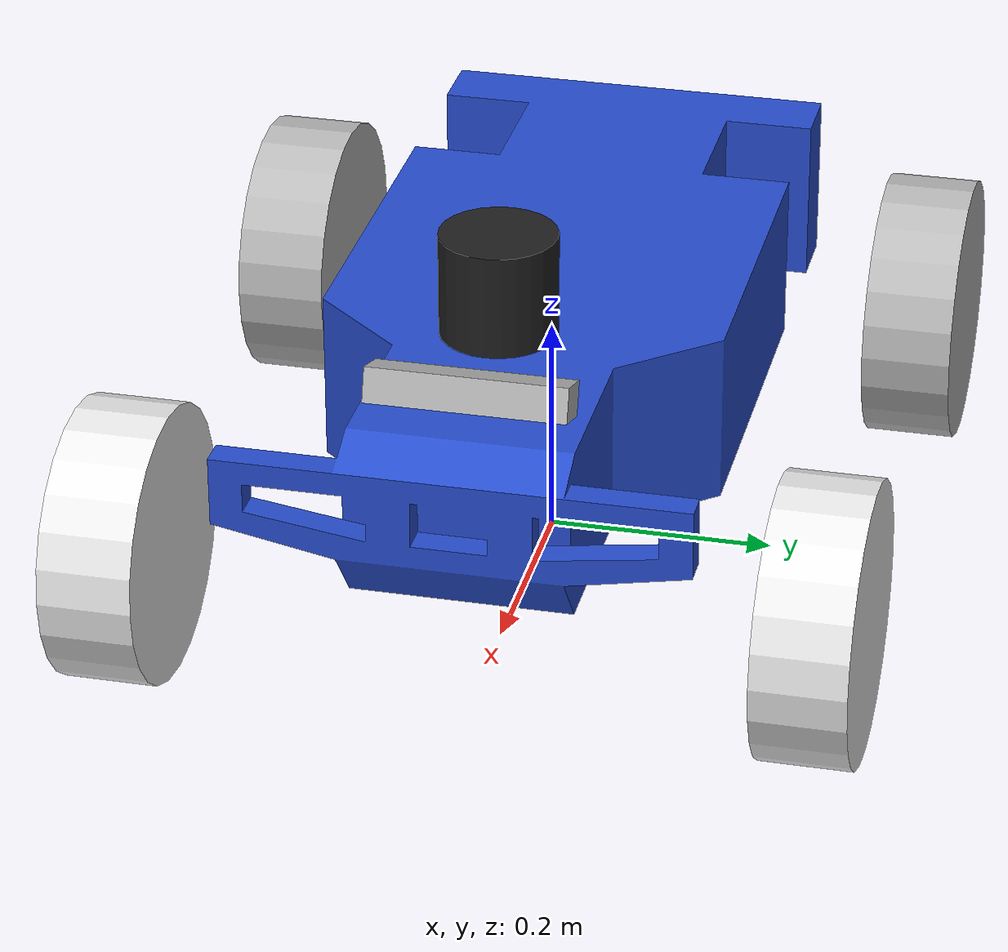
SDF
<sdf version='1.7'>
  <model name='rosbot'>
    <static>false</static>
    <link name='base_footprint'>
      <inertial>
        <pose>0.00083 0 0.190622 0 -0 0</pose>
        <mass>30.125</mass>
        <inertia>
          <ixx>1.0038</ixx>
          <ixy>0</ixy>
          <ixz>-0.00373444</ixz>
          <iyy>1.00878</iyy>
          <iyz>0</iyz>
          <izz>1.00598</izz>
        </inertia>
      </inertial>
      <collision name='base_footprint_fixed_joint_lump__chasis_collision'>
        <pose>-0.381 0.2 0.115 1.57 -0 0</pose>
        <geometry>
          <mesh>
            <scale>0.001 0.001 0.001</scale>
            <uri>model://rosbot/meshes/box.STL</uri>
          </mesh>
        </geometry>
        <surface>
          <contact>
            <ode/>
          </contact>
          <friction>
            <ode/>
          </friction>
        </surface>
      </collision>
      <collision name='base_footprint_fixed_joint_lump__lidar_link_collision_1'>
        <pose>0.2 0 0.34 0 -0 0</pose>
        <geometry>
          <cylinder>
            <length>0.05</length>
            <radius>0.05</radius>
          </cylinder>
        </geometry>
        <surface>
          <contact>
            <ode/>
          </contact>
          <friction>
            <ode>
              <mu>0.01</mu>
              <mu2>0.01</mu2>
            </ode>
          </friction>
        </surface>
      </collision>
      <visual name='base_footprint_fixed_joint_lump__chasis_visual'>
        <pose>-0.381 0.2 0.115 1.57 -0 0</pose>
        <geometry>
          <mesh>
            <scale>0.001 0.001 0.001</scale>
            <uri>model://rosbot/meshes/box.STL</uri>
          </mesh>
        </geometry>
        <material>
          <script>
            <name>Gazebo/Blue</name>
            <uri>file://media/materials/scripts/gazebo.material</uri>
          </script>
        </material>
      </visual>
      <visual name='base_footprint_fixed_joint_lump__camara_link_visual_1'>
        <pose>0.3 0 0.29 0 -0.312 0</pose>
        <geometry>
          <box>
            <size>0.04 0.17 0.03</size>
          </box>
        </geometry>
      </visual>
      <visual name='base_footprint_fixed_joint_lump__lidar_link_visual_2'>
        <pose>0.2 0 0.34 0 -0 0</pose>
        <geometry>
          <cylinder>
            <length>0.09</length>
            <radius>0.05</radius>
          </cylinder>
        </geometry>
        <material>
          <script>
            <name>Gazebo/Black</name>
            <uri>file://media/materials/scripts/gazebo.material</uri>
          </script>
        </material>
      </visual>
      <sensor name='lidar' type='ray'>
        <always_on>1</always_on>
        <visualize>1</visualize>
        <update_rate>5</update_rate>
        <ray>
          <scan>
            <horizontal>
              <samples>120</samples>
              <resolution>1</resolution>
              <min_angle>-3.14159</min_angle>
              <max_angle>3.14159</max_angle>
            </horizontal>
          </scan>
          <range>
            <min>0.3</min>
            <max>15</max>
            <resolution>0.015</resolution>
          </range>
          <noise>
            <type>gaussian</type>
            <mean>0</mean>
            <stddev>0.01</stddev>
          </noise>
        </ray>
        <plugin name='scan' filename='libgazebo_ros_ray_sensor.so'>
          <ros>
            <remapping>~/out:=scan</remapping>
          </ros>
          <output_type>sensor_msgs/LaserScan</output_type>
          <frame_name>lidar_link</frame_name>
        </plugin>
        <pose>0.2 0 0.34 0 -0 0</pose>
      </sensor>
    </link>
    <joint name='joint_left_rear_wheel' type='revolute'>
      <pose relative_to='base_footprint'>-0.27 0.295 0.12 1.57 -0 0</pose>
      <parent>base_footprint</parent>
      <child>left_rear_wheel</child>
      <axis>
        <xyz>0 0 1</xyz>
        <limit>
          <lower>-1e+16</lower>
          <upper>1e+16</upper>
        </limit>
        <dynamics>
          <spring_reference>0</spring_reference>
          <spring_stiffness>0</spring_stiffness>
        </dynamics>
      </axis>
    </joint>
    <link name='left_rear_wheel'>
      <pose relative_to='joint_left_rear_wheel'>0 0 0 0 -0 0</pose>
      <inertial>
        <pose>0 0 0 0 -0 0</pose>
        <mass>1</mass>
        <inertia>
          <ixx>1</ixx>
          <ixy>0</ixy>
          <ixz>0</ixz>
          <iyy>1</iyy>
          <iyz>0</iyz>
          <izz>1</izz>
        </inertia>
      </inertial>
      <collision name='left_rear_wheel_collision'>
        <pose>0 0 0 0 -0 0</pose>
        <geometry>
          <cylinder>
            <length>0.08</length>
            <radius>0.12</radius>
          </cylinder>
        </geometry>
      </collision>
      <visual name='left_rear_wheel_visual'>
        <pose>0 0 0 0 -0 0</pose>
        <geometry>
          <cylinder>
            <length>0.08</length>
            <radius>0.12</radius>
          </cylinder>
        </geometry>
      </visual>
    </link>
    <joint name='joint_left_wheel_front' type='revolute'>
      <pose relative_to='base_footprint'>0.31 0.295 0.12 1.57 -0 0</pose>
      <parent>base_footprint</parent>
      <child>left_wheel_front_assembly</child>
      <axis>
        <xyz>0 1 0</xyz>
        <limit>
          <lower>-0.78</lower>
          <upper>0.78</upper>
          <effort>100</effort>
          <velocity>1</velocity>
        </limit>
        <dynamics>
          <spring_reference>0</spring_reference>
          <spring_stiffness>0</spring_stiffness>
        </dynamics>
      </axis>
    </joint>
    <link name='left_wheel_front_assembly'>
      <pose relative_to='joint_left_wheel_front'>0 0 0 0 -0 0</pose>
      <inertial>
        <pose>0 0 0 0 -0 0</pose>
        <mass>0.01</mass>
        <inertia>
          <ixx>1</ixx>
          <ixy>0</ixy>
          <ixz>0</ixz>
          <iyy>1</iyy>
          <iyz>0</iyz>
          <izz>1</izz>
        </inertia>
      </inertial>
      <visual name='left_wheel_front_assembly_visual'>
        <pose>0 0 0 0 -0 0</pose>
        <geometry>
          <cylinder>
            <length>0.001</length>
            <radius>0.04</radius>
          </cylinder>
        </geometry>
      </visual>
    </link>
    <joint name='joint_left_wheel_assembly' type='revolute'>
      <pose relative_to='left_wheel_front_assembly'>0 0 0 0 -0 0</pose>
      <parent>left_wheel_front_assembly</parent>
      <child>left_wheel_front</child>
      <axis>
        <xyz>0 0 1</xyz>
        <limit>
          <effort>100</effort>
          <velocity>1</velocity>
          <lower>-1e+16</lower>
          <upper>1e+16</upper>
        </limit>
        <dynamics>
          <spring_reference>0</spring_reference>
          <spring_stiffness>0</spring_stiffness>
        </dynamics>
      </axis>
    </joint>
    <link name='left_wheel_front'>
      <pose relative_to='joint_left_wheel_assembly'>0 0 0 0 -0 0</pose>
      <inertial>
        <pose>0 0 0 0 -0 0</pose>
        <mass>1</mass>
        <inertia>
          <ixx>1</ixx>
          <ixy>0</ixy>
          <ixz>0</ixz>
          <iyy>1</iyy>
          <iyz>0</iyz>
          <izz>1</izz>
        </inertia>
      </inertial>
      <collision name='left_wheel_front_collision'>
        <pose>0 0 0 0 -0 0</pose>
        <geometry>
          <cylinder>
            <length>0.08</length>
            <radius>0.12</radius>
          </cylinder>
        </geometry>
        <surface>
          <contact>
            <ode/>
          </contact>
          <friction>
            <ode/>
          </friction>
        </surface>
      </collision>
      <visual name='left_wheel_front_visual'>
        <pose>0 0 0 0 -0 0</pose>
        <geometry>
          <cylinder>
            <length>0.08</length>
            <radius>0.12</radius>
          </cylinder>
        </geometry>
        <material>
          <script>
            <name>Gazebo/White</name>
            <uri>file://media/materials/scripts/gazebo.material</uri>
          </script>
        </material>
      </visual>
    </link>
    <joint name='joint_right_rear_wheel' type='revolute'>
      <pose relative_to='base_footprint'>-0.27 -0.295 0.12 1.57 -0 0</pose>
      <parent>base_footprint</parent>
      <child>right_rear_wheel</child>
      <axis>
        <xyz>0 0 1</xyz>
        <limit>
          <lower>-1e+16</lower>
          <upper>1e+16</upper>
        </limit>
        <dynamics>
          <spring_reference>0</spring_reference>
          <spring_stiffness>0</spring_stiffness>
        </dynamics>
      </axis>
    </joint>
    <link name='right_rear_wheel'>
      <pose relative_to='joint_right_rear_wheel'>0 0 0 0 -0 0</pose>
      <inertial>
        <pose>0 0 0 0 -0 0</pose>
        <mass>1</mass>
        <inertia>
          <ixx>1</ixx>
          <ixy>0</ixy>
          <ixz>0</ixz>
          <iyy>1</iyy>
          <iyz>0</iyz>
          <izz>1</izz>
        </inertia>
      </inertial>
      <collision name='right_rear_wheel_collision'>
        <pose>0 0 0 0 -0 0</pose>
        <geometry>
          <cylinder>
            <length>0.08</length>
            <radius>0.12</radius>
          </cylinder>
        </geometry>
      </collision>
      <visual name='right_rear_wheel_visual'>
        <pose>0 0 0 0 -0 0</pose>
        <geometry>
          <cylinder>
            <length>0.08</length>
            <radius>0.12</radius>
          </cylinder>
        </geometry>
      </visual>
    </link>
    <joint name='joint_right_wheel_front' type='revolute'>
      <pose relative_to='base_footprint'>0.31 -0.295 0.12 1.57 -0 0</pose>
      <parent>base_footprint</parent>
      <child>right_wheel_front_assembly</child>
      <axis>
        <xyz>0 1 0</xyz>
        <limit>
          <lower>-0.78</lower>
          <upper>0.78</upper>
          <effort>100</effort>
          <velocity>1</velocity>
        </limit>
        <dynamics>
          <spring_reference>0</spring_reference>
          <spring_stiffness>0</spring_stiffness>
        </dynamics>
      </axis>
    </joint>
    <link name='right_wheel_front_assembly'>
      <pose relative_to='joint_right_wheel_front'>0 0 0 0 -0 0</pose>
      <inertial>
        <pose>0 0 0 0 -0 0</pose>
        <mass>0.01</mass>
        <inertia>
          <ixx>1</ixx>
          <ixy>0</ixy>
          <ixz>0</ixz>
          <iyy>1</iyy>
          <iyz>0</iyz>
          <izz>1</izz>
        </inertia>
      </inertial>
      <visual name='right_wheel_front_assembly_visual'>
        <pose>0 0 0 0 -0 0</pose>
        <geometry>
          <cylinder>
            <length>0.001</length>
            <radius>0.04</radius>
          </cylinder>
        </geometry>
      </visual>
    </link>
    <joint name='joint_right_wheel_assembly' type='revolute'>
      <pose relative_to='right_wheel_front_assembly'>0 0 0 0 -0 0</pose>
      <parent>right_wheel_front_assembly</parent>
      <child>right_wheel_front</child>
      <axis>
        <xyz>0 0 1</xyz>
        <limit>
          <effort>100</effort>
          <velocity>1</velocity>
          <lower>-1e+16</lower>
          <upper>1e+16</upper>
        </limit>
        <dynamics>
          <spring_reference>0</spring_reference>
          <spring_stiffness>0</spring_stiffness>
        </dynamics>
      </axis>
    </joint>
    <link name='right_wheel_front'>
      <pose relative_to='joint_right_wheel_assembly'>0 0 0 0 -0 0</pose>
      <inertial>
        <pose>0 0 0 0 -0 0</pose>
        <mass>1</mass>
        <inertia>
          <ixx>1</ixx>
          <ixy>0</ixy>
          <ixz>0</ixz>
          <iyy>1</iyy>
          <iyz>0</iyz>
          <izz>1</izz>
        </inertia>
      </inertial>
      <collision name='right_wheel_front_collision'>
        <pose>0 0 0 0 -0 0</pose>
        <geometry>
          <cylinder>
            <length>0.08</length>
            <radius>0.12</radius>
          </cylinder>
        </geometry>
        <surface>
          <contact>
            <ode/>
          </contact>
          <friction>
            <ode/>
          </friction>
        </surface>
      </collision>
      <visual name='right_wheel_front_visual'>
        <pose>0 0 0 0 -0 0</pose>
        <geometry>
          <cylinder>
            <length>0.08</length>
            <radius>0.12</radius>
          </cylinder>
        </geometry>
        <material>
          <script>
            <name>Gazebo/White</name>
            <uri>file://media/materials/scripts/gazebo.material</uri>
          </script>
        </material>
      </visual>
    </link>
  </model>
</sdf>
